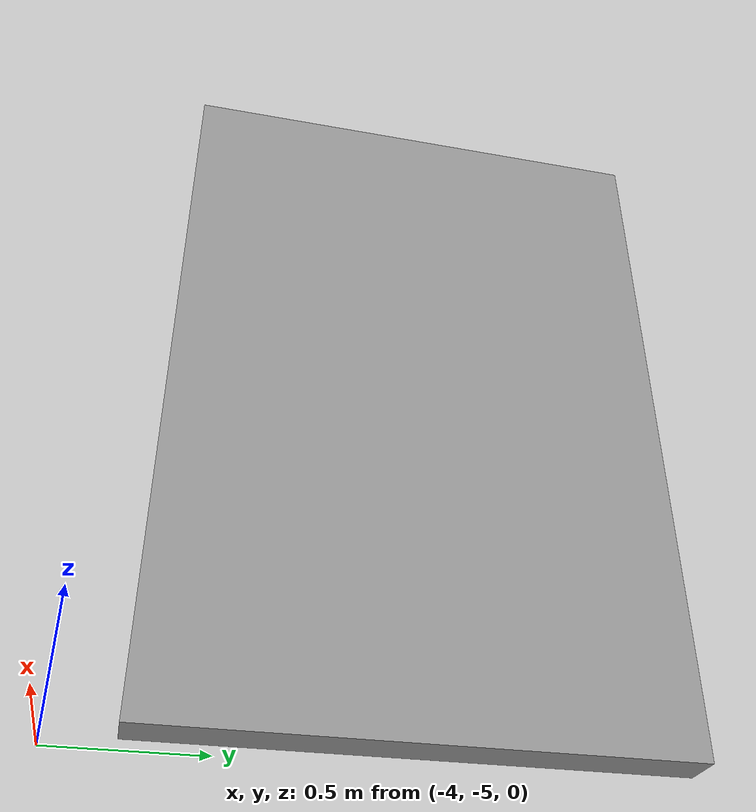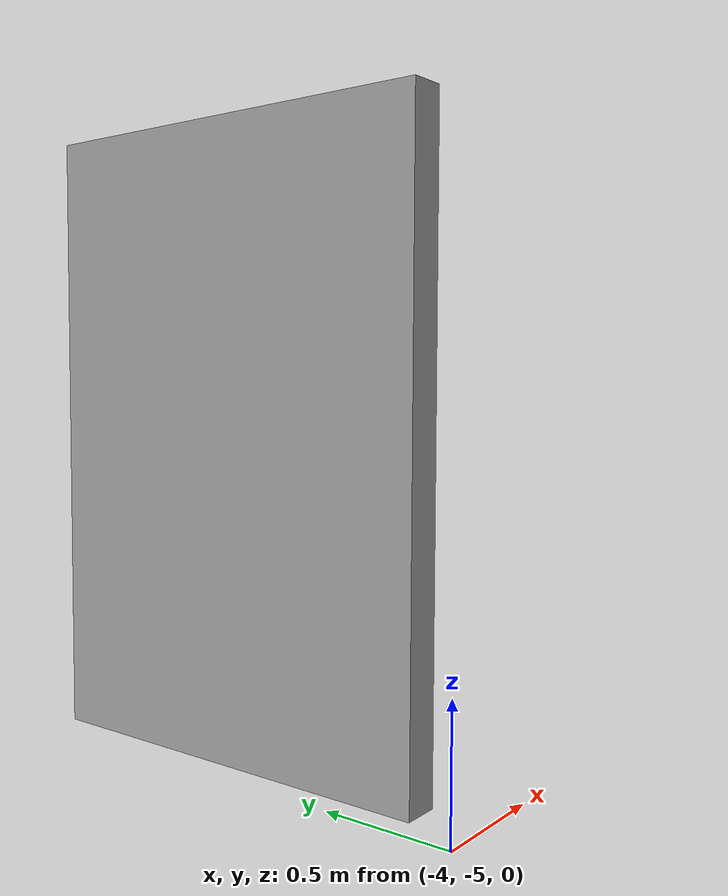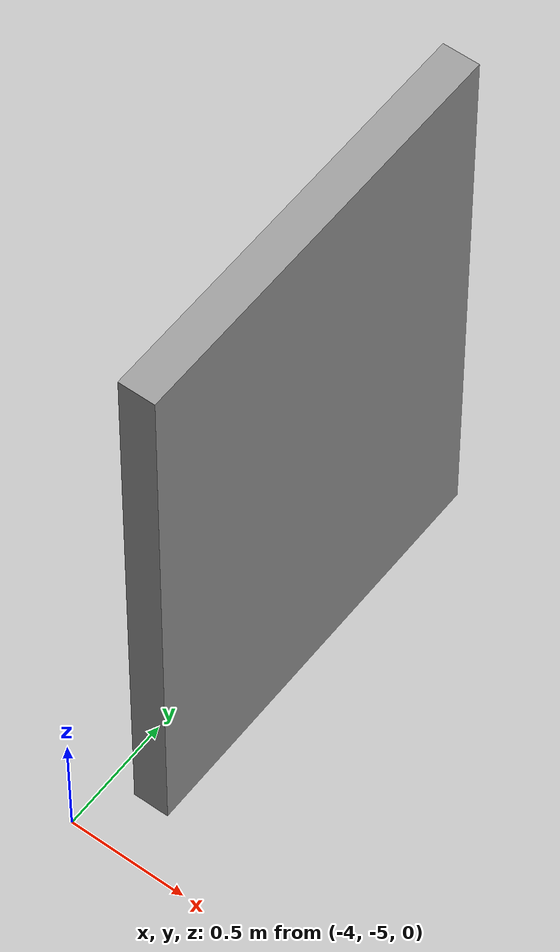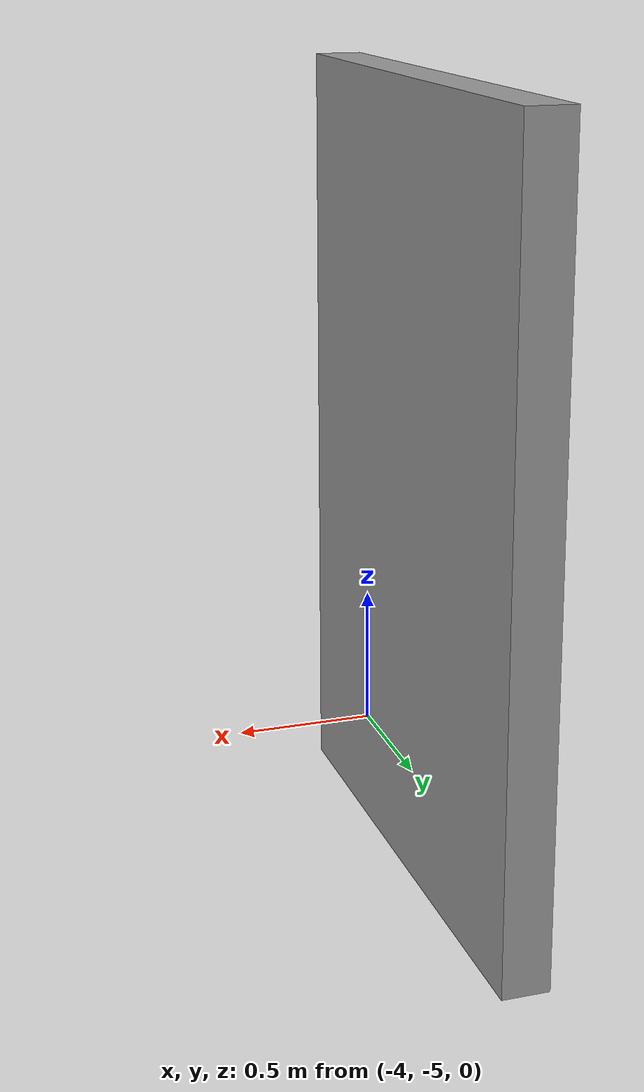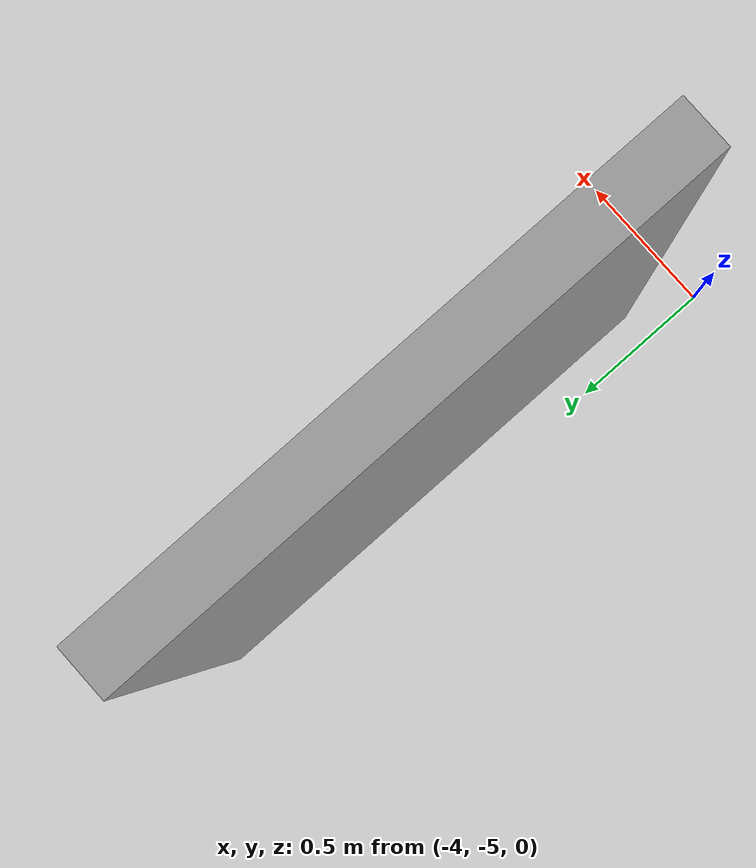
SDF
<?xml version='1.0'?>
<sdf version='1.7'>
  <model name='single_wall'>
    <pose>-1.9475 -2.3875 0 0 -0 0</pose>
    <link name='Wall_0'>
      <collision name='Wall_0_Collision'>
        <geometry>
          <box>
            <size>1.75 0.15 2.5</size>
          </box>
        </geometry>
        <pose>0 0 1.25 0 -0 0</pose>
      </collision>
      <visual name='Wall_0_Visual'>
        <pose>0 0 1.25 0 -0 0</pose>
        <geometry>
          <box>
            <size>1.75 0.15 2.5</size>
          </box>
        </geometry>
        <material>
          <script>
            <uri>file://media/materials/scripts/gazebo.material</uri>
            <name>Gazebo/Grey</name>
          </script>
          <ambient>1 1 1 1</ambient>
        </material>
        <meta>
          <layer>0</layer>
        </meta>
      </visual>
      <pose>-1.8725 -1.5125 0 0 -0 -1.5708</pose>
    </link>
    <static>1</static>
  </model>
</sdf>
